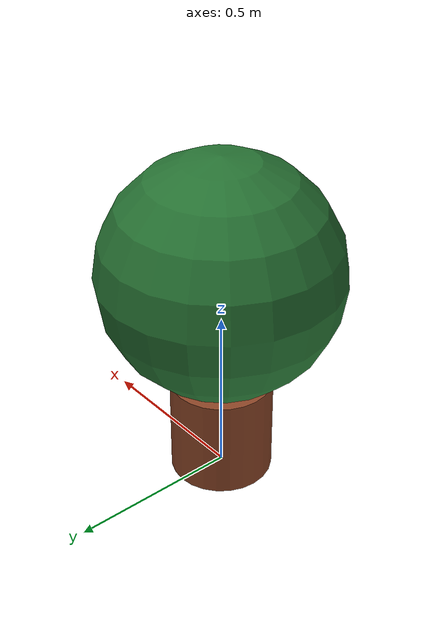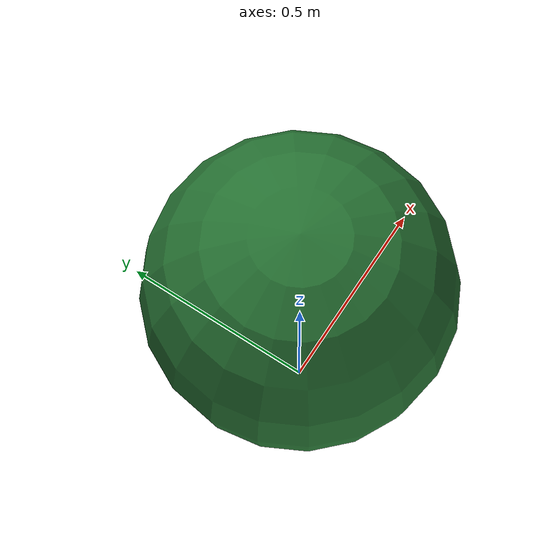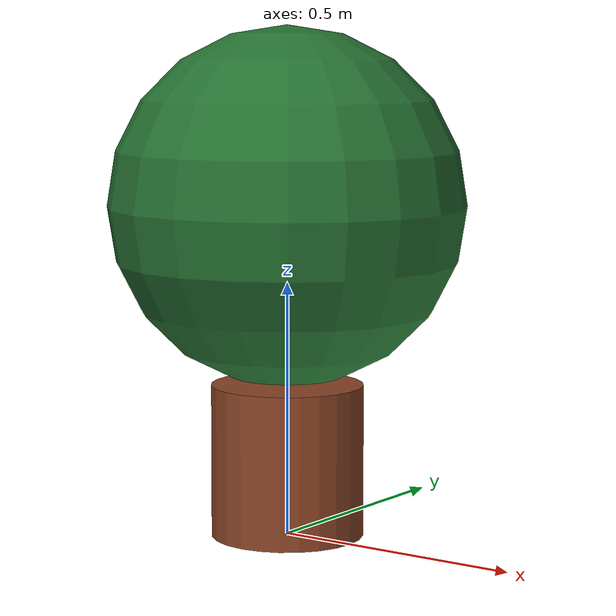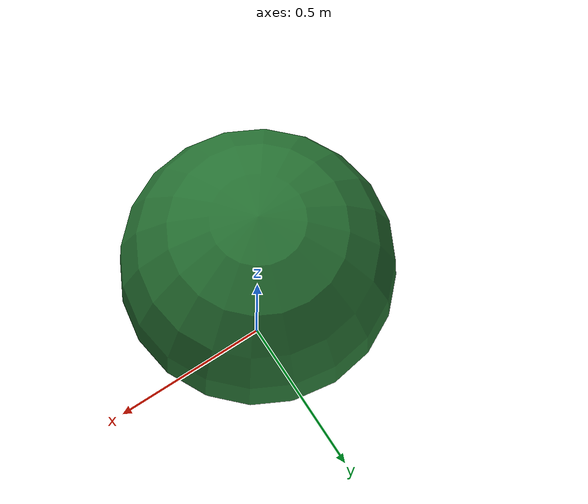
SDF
<?xml version="1.0"?>

<sdf version="1.10">

  <model name="potted_plant">

    <static>true</static>

    <link name="plant_link">

      <!-- POT                         -->

      <collision name="pot_collision">
        <pose>0 0 0.15 0 0 0</pose>
        <geometry>
          <cylinder>
            <radius>0.15</radius>
            <length>0.3</length>
          </cylinder>
        </geometry>
      </collision>

      <visual name="pot_visual">
        <pose>0 0 0.15 0 0 0</pose>
        <geometry>
          <cylinder>
            <radius>0.15</radius>
            <length>0.3</length>
          </cylinder>
        </geometry>
        <material>
          <ambient>0.55 0.27 0.15 1</ambient>
          <diffuse>0.55 0.27 0.15 1</diffuse>
          <specular>0.1 0.1 0.1 1</specular>
        </material>
      </visual>

      <!-- FOLIAGE                     -->

      <collision name="foliage_collision">
        <pose>0 0 0.65 0 0 0</pose>
        <geometry>
          <sphere>
            <radius>0.35</radius>
          </sphere>
        </geometry>
      </collision>

      <visual name="foliage_visual">
        <pose>0 0 0.65 0 0 0</pose>
        <geometry>
          <sphere>
            <radius>0.35</radius>
          </sphere>
        </geometry>
        <material>
          <ambient>0.15 0.45 0.2 1</ambient>
          <diffuse>0.15 0.45 0.2 1</diffuse>
          <specular>0.1 0.1 0.1 1</specular>
        </material>
      </visual>

    </link>

  </model>

</sdf>
